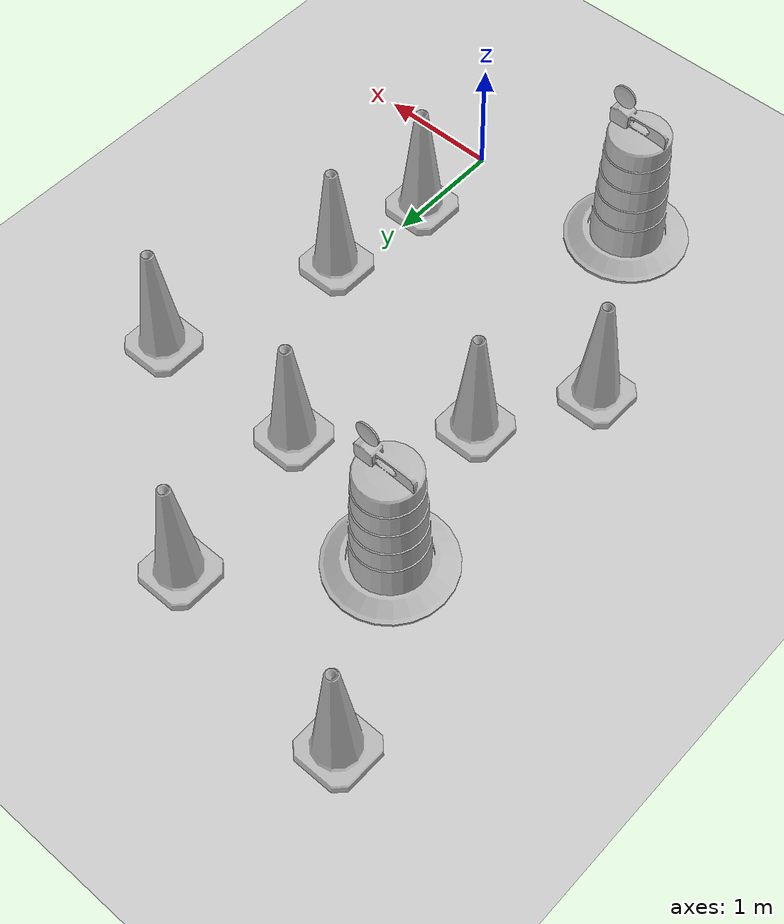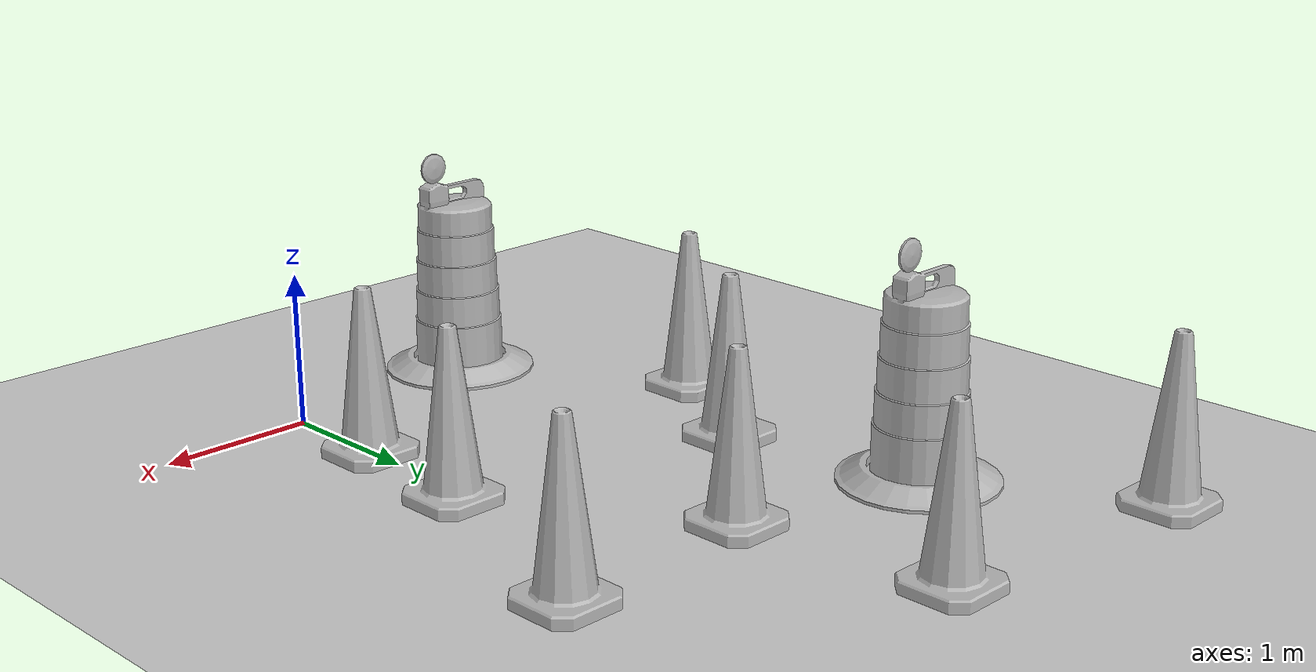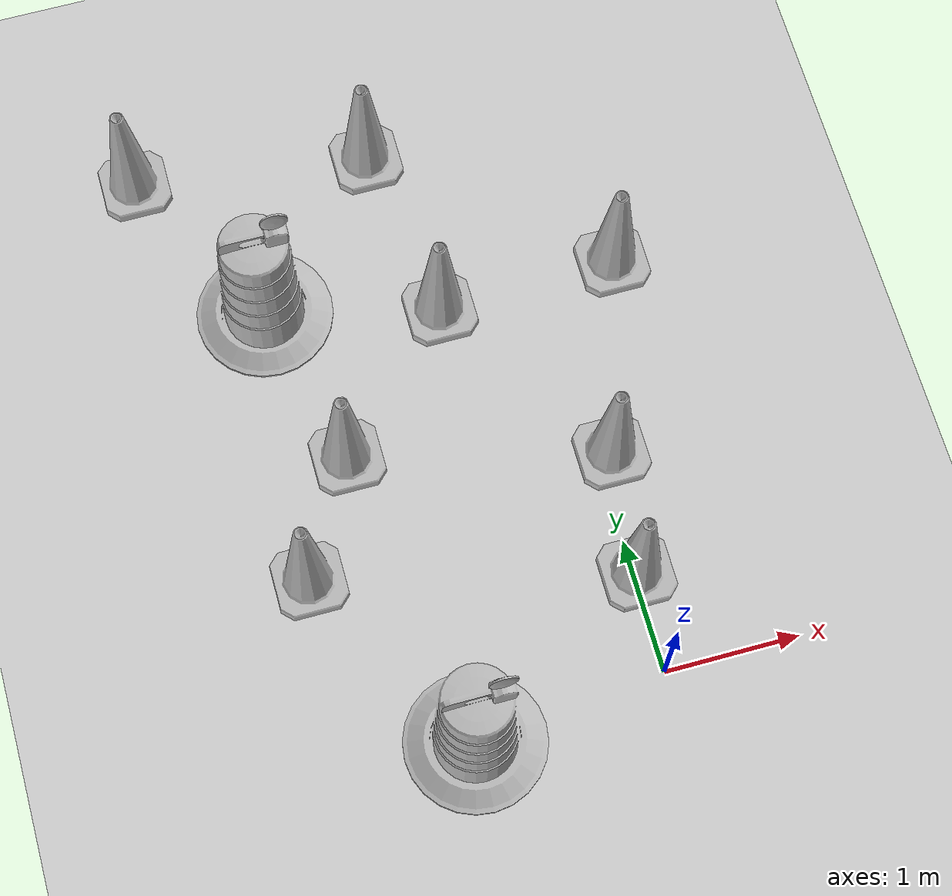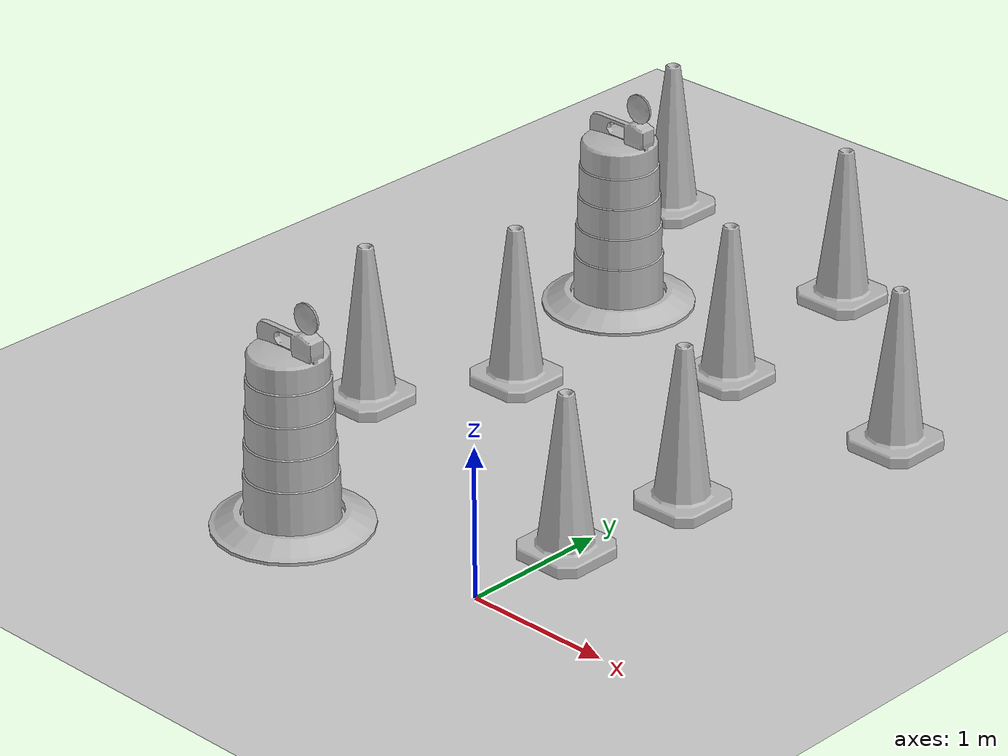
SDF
<sdf version="1.7">
 <world name="default">
  <light name="sun" type="directional">
   <pose>0 0 10 0 -0 0</pose>
   <diffuse>0.8 0.8 0.8 1</diffuse>
   <specular>0.2 0.2 0.2 1</specular>
   <attenuation>
    <range>1000</range>
    <constant>0.9</constant>
    <linear>0.01</linear>
    <quadratic>0.001</quadratic>
   </attenuation>
   <direction>-0.5 0.1 -0.9</direction>
   <spot><inner_angle>0</inner_angle><outer_angle>0</outer_angle><falloff>0</falloff></spot>
  </light>
  <model name="ground_plane">
   <static>1</static>
   <link name="link">
    <collision name="collision">
     <geometry><plane><normal>0 0 1</normal><size>100 100</size></plane></geometry>
     <surface>
      <contact><collide_bitmask>65535</collide_bitmask></contact>
      <friction><ode><mu>100</mu><mu2>50</mu2></ode></friction>
     </surface>
    </collision>
    <visual name="visual">
     <cast_shadows>0</cast_shadows>
     <geometry><plane><normal>0 0 1</normal><size>100 100</size></plane></geometry>
     <material>
      <script><uri>file://media/materials/scripts/gazebo.material</uri><name>Gazebo/Grey</name></script>
     </material>
    </visual>
   </link>
  </model>
  <gravity>0 0 -9.8</gravity>
  <magnetic_field>6e-06 2.3e-05 -4.2e-05</magnetic_field>
  <atmosphere type="adiabatic"/>
  <physics type="ode">
   <max_step_size>0.001</max_step_size>
   <real_time_factor>1</real_time_factor>
   <real_time_update_rate>1000</real_time_update_rate>
  </physics>
  <scene><ambient>0.4 0.4 0.4 1</ambient><background>0.7 0.7 0.7 1</background><shadows>1</shadows></scene>
  <audio><device>default</device></audio>
  <spherical_coordinates>
   <surface_model>EARTH_WGS84</surface_model>
   <latitude_deg>0</latitude_deg>
   <longitude_deg>0</longitude_deg>
   <elevation>0</elevation>
   <heading_deg>0</heading_deg>
  </spherical_coordinates>
  <model name="Construction Barrel">
   <link name="link">
    <inertial>
     <pose>0 0 0.4 0 -0 0</pose>
     <mass>500</mass>
     <inertia><ixx>51.2096</ixx><iyy>51.2096</iyy><izz>25</izz><ixy>0</ixy><ixz>0</ixz><iyz>0</iyz></inertia>
    </inertial>
    <collision name="collision">
     <geometry><mesh><uri>model://construction_barrel/meshes/construction_barrel.dae</uri></mesh></geometry>
    </collision>
    <visual name="visual">
     <geometry><mesh><uri>model://construction_barrel/meshes/construction_barrel.dae</uri></mesh></geometry>
    </visual>
   </link>
   <pose>-1.41893 -0.13431 -0 1e-06 -1e-06 -2.7e-05</pose>
  </model>
  <model name="Construction Cone">
   <link name="link">
    <collision name="collision">
     <geometry>
      <mesh><scale>10 10 10</scale><uri>model://construction_cone/meshes/construction_cone.dae</uri></mesh>
     </geometry>
    </collision>
    <visual name="visual">
     <geometry>
      <mesh><scale>10 10 10</scale><uri>model://construction_cone/meshes/construction_cone.dae</uri></mesh>
     </geometry>
    </visual>
    <inertial>
     <inertia><ixx>1</ixx><ixy>0</ixy><ixz>0</ixz><iyy>1</iyy><iyz>0</iyz><izz>1</izz></inertia>
     <mass>1</mass>
    </inertial>
   </link>
   <pose>-1.7517 2.13765 -0 0 -1e-06 0</pose>
  </model>
  <model name="Construction Cone_0">
   <link name="link">
    <collision name="collision">
     <geometry>
      <mesh><scale>10 10 10</scale><uri>model://construction_cone/meshes/construction_cone.dae</uri></mesh>
     </geometry>
    </collision>
    <visual name="visual">
     <geometry>
      <mesh><scale>10 10 10</scale><uri>model://construction_cone/meshes/construction_cone.dae</uri></mesh>
     </geometry>
    </visual>
    <inertial>
     <inertia><ixx>1</ixx><ixy>0</ixy><ixz>0</ixz><iyy>1</iyy><iyz>0</iyz><izz>1</izz></inertia>
     <mass>1</mass>
    </inertial>
   </link>
   <pose>-2.24557 1.30146 -0 0 -0 0</pose>
  </model>
  <model name="Construction Cone_1">
   <link name="link">
    <collision name="collision">
     <geometry>
      <mesh><scale>10 10 10</scale><uri>model://construction_cone/meshes/construction_cone.dae</uri></mesh>
     </geometry>
    </collision>
    <visual name="visual">
     <geometry>
      <mesh><scale>10 10 10</scale><uri>model://construction_cone/meshes/construction_cone.dae</uri></mesh>
     </geometry>
    </visual>
    <inertial>
     <inertia><ixx>1</ixx><ixy>0</ixy><ixz>0</ixz><iyy>1</iyy><iyz>0</iyz><izz>1</izz></inertia>
     <mass>1</mass>
    </inertial>
   </link>
   <pose>-0.790651 3.09783 -0 0 -0 0</pose>
  </model>
  <model name="Construction Cone_2">
   <link name="link">
    <collision name="collision">
     <geometry>
      <mesh><scale>10 10 10</scale><uri>model://construction_cone/meshes/construction_cone.dae</uri></mesh>
     </geometry>
    </collision>
    <visual name="visual">
     <geometry>
      <mesh><scale>10 10 10</scale><uri>model://construction_cone/meshes/construction_cone.dae</uri></mesh>
     </geometry>
    </visual>
    <inertial>
     <inertia><ixx>1</ixx><ixy>0</ixy><ixz>0</ixz><iyy>1</iyy><iyz>0</iyz><izz>1</izz></inertia>
     <mass>1</mass>
    </inertial>
   </link>
   <pose>0.020918 0.743842 -0 0 -0 0</pose>
  </model>
  <model name="Construction Cone_3">
   <link name="link">
    <collision name="collision">
     <geometry>
      <mesh><scale>10 10 10</scale><uri>model://construction_cone/meshes/construction_cone.dae</uri></mesh>
     </geometry>
    </collision>
    <visual name="visual">
     <geometry>
      <mesh><scale>10 10 10</scale><uri>model://construction_cone/meshes/construction_cone.dae</uri></mesh>
     </geometry>
    </visual>
    <inertial>
     <inertia><ixx>1</ixx><ixy>0</ixy><ixz>0</ixz><iyy>1</iyy><iyz>0</iyz><izz>1</izz></inertia>
     <mass>1</mass>
    </inertial>
   </link>
   <pose>0.113683 1.67055 -0 0 -0 0</pose>
  </model>
  <model name="Construction Cone_4">
   <link name="link">
    <collision name="collision">
     <geometry>
      <mesh><scale>10 10 10</scale><uri>model://construction_cone/meshes/construction_cone.dae</uri></mesh>
     </geometry>
    </collision>
    <visual name="visual">
     <geometry>
      <mesh><scale>10 10 10</scale><uri>model://construction_cone/meshes/construction_cone.dae</uri></mesh>
     </geometry>
    </visual>
    <inertial>
     <inertia><ixx>1</ixx><ixy>0</ixy><ixz>0</ixz><iyy>1</iyy><iyz>0</iyz><izz>1</izz></inertia>
     <mass>1</mass>
    </inertial>
   </link>
   <pose>0.565351 3.14138 -1e-06 2e-06 2e-06 0</pose>
  </model>
  <model name="Construction Barrel_0">
   <link name="link">
    <inertial>
     <pose>0 0 0.4 0 -0 0</pose>
     <mass>500</mass>
     <inertia><ixx>51.2096</ixx><iyy>51.2096</iyy><izz>25</izz><ixy>0</ixy><ixz>0</ixz><iyz>0</iyz></inertia>
    </inertial>
    <collision name="collision">
     <geometry><mesh><uri>model://construction_barrel/meshes/construction_barrel.dae</uri></mesh></geometry>
    </collision>
    <visual name="visual">
     <geometry><mesh><uri>model://construction_barrel/meshes/construction_barrel.dae</uri></mesh></geometry>
    </visual>
   </link>
   <pose>-2.05534 3.42047 1e-06 6e-06 7e-06 -1.1e-05</pose>
  </model>
  <model name="Construction Cone_5">
   <link name="link">
    <collision name="collision">
     <geometry>
      <mesh><scale>10 10 10</scale><uri>model://construction_cone/meshes/construction_cone.dae</uri></mesh>
     </geometry>
    </collision>
    <visual name="visual">
     <geometry>
      <mesh><scale>10 10 10</scale><uri>model://construction_cone/meshes/construction_cone.dae</uri></mesh>
     </geometry>
    </visual>
    <inertial>
     <inertia><ixx>1</ixx><ixy>0</ixy><ixz>0</ixz><iyy>1</iyy><iyz>0</iyz><izz>1</izz></inertia>
     <mass>1</mass>
    </inertial>
   </link>
   <pose>-1.00257 4.46516 0 -0 -0 -0</pose>
  </model>
  <model name="Construction Cone_6">
   <link name="link">
    <collision name="collision">
     <geometry>
      <mesh><scale>10 10 10</scale><uri>model://construction_cone/meshes/construction_cone.dae</uri></mesh>
     </geometry>
    </collision>
    <visual name="visual">
     <geometry>
      <mesh><scale>10 10 10</scale><uri>model://construction_cone/meshes/construction_cone.dae</uri></mesh>
     </geometry>
    </visual>
    <inertial>
     <inertia><ixx>1</ixx><ixy>0</ixy><ixz>0</ixz><iyy>1</iyy><iyz>0</iyz><izz>1</izz></inertia>
     <mass>1</mass>
    </inertial>
   </link>
   <pose>-2.75927 4.7109 -0 0 -0 0</pose>
  </model>
 </world>
</sdf>
